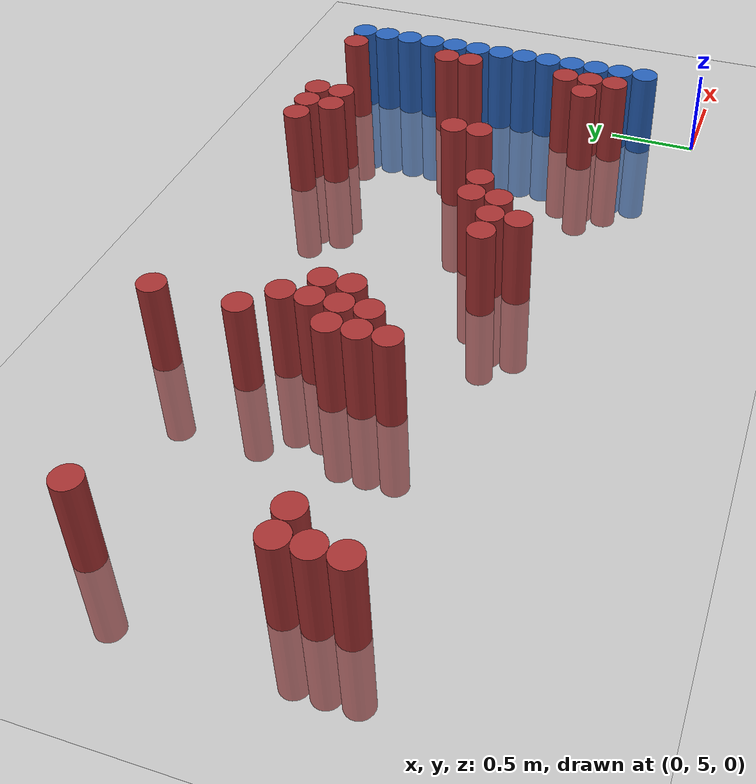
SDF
<sdf version="1.6">
 <world name="default">
  <model name="ground_plane">
   <static>1</static>
   <link name="link">
    <collision name="collision">
     <geometry><plane><normal>0 0 1</normal><size>100 100</size></plane></geometry>
     <surface><friction><ode><mu>100</mu><mu2>50</mu2></ode></friction></surface>
    </collision>
    <visual name="visual">
     <cast_shadows>0</cast_shadows>
     <geometry><plane><normal>0 0 1</normal><size>100 100</size></plane></geometry>
     <material>
      <script><uri>file://media/materials/scripts/gazebo.material</uri><name>Gazebo/Grey</name></script>
     </material>
    </visual>
   </link>
  </model>
  <model name="unit_cylinder_147">
   <static>1</static>
   <pose>-3.975000 5.625000 0.000000 0.000000 0.000000 0.000000</pose>
   <link name="link">
    <inertial>
     <mass>1</mass>
     <inertia><ixx>0.145833</ixx><ixy>0</ixy><ixz>0</ixz><iyy>0.145833</iyy><iyz>0</iyz><izz>0.125</izz></inertia>
    </inertial>
    <collision name="collision">
     <geometry><cylinder><radius>0.075000</radius><length>1</length></cylinder></geometry>
    </collision>
    <visual name="visual">
     <geometry><cylinder><radius>0.075000</radius><length>1</length></cylinder></geometry>
     <material>
      <ambient>0.648000 0.192000 0.192000 1</ambient>
      <diffuse>0.648000 0.192000 0.192000 1</diffuse>
     </material>
     <material>
      <script><name>Gazebo/Grey</name><uri>file://media/materials/scripts/gazebo.material</uri></script>
     </material>
    </visual>
   </link>
  </model>
  <model name="unit_cylinder_148">
   <static>1</static>
   <pose>-3.975000 5.775000 0.000000 0.000000 0.000000 0.000000</pose>
   <link name="link">
    <inertial>
     <mass>1</mass>
     <inertia><ixx>0.145833</ixx><ixy>0</ixy><ixz>0</ixz><iyy>0.145833</iyy><iyz>0</iyz><izz>0.125</izz></inertia>
    </inertial>
    <collision name="collision">
     <geometry><cylinder><radius>0.075000</radius><length>1</length></cylinder></geometry>
    </collision>
    <visual name="visual">
     <geometry><cylinder><radius>0.075000</radius><length>1</length></cylinder></geometry>
     <material>
      <ambient>0.648000 0.192000 0.192000 1</ambient>
      <diffuse>0.648000 0.192000 0.192000 1</diffuse>
     </material>
     <material>
      <script><name>Gazebo/Grey</name><uri>file://media/materials/scripts/gazebo.material</uri></script>
     </material>
    </visual>
   </link>
  </model>
  <model name="unit_cylinder_149">
   <static>1</static>
   <pose>-3.975000 5.925000 0.000000 0.000000 0.000000 0.000000</pose>
   <link name="link">
    <inertial>
     <mass>1</mass>
     <inertia><ixx>0.145833</ixx><ixy>0</ixy><ixz>0</ixz><iyy>0.145833</iyy><iyz>0</iyz><izz>0.125</izz></inertia>
    </inertial>
    <collision name="collision">
     <geometry><cylinder><radius>0.075000</radius><length>1</length></cylinder></geometry>
    </collision>
    <visual name="visual">
     <geometry><cylinder><radius>0.075000</radius><length>1</length></cylinder></geometry>
     <material>
      <ambient>0.648000 0.192000 0.192000 1</ambient>
      <diffuse>0.648000 0.192000 0.192000 1</diffuse>
     </material>
     <material>
      <script><name>Gazebo/Grey</name><uri>file://media/materials/scripts/gazebo.material</uri></script>
     </material>
    </visual>
   </link>
  </model>
  <model name="unit_cylinder_150">
   <static>1</static>
   <pose>-3.975000 6.825000 0.000000 0.000000 0.000000 0.000000</pose>
   <link name="link">
    <inertial>
     <mass>1</mass>
     <inertia><ixx>0.145833</ixx><ixy>0</ixy><ixz>0</ixz><iyy>0.145833</iyy><iyz>0</iyz><izz>0.125</izz></inertia>
    </inertial>
    <collision name="collision">
     <geometry><cylinder><radius>0.075000</radius><length>1</length></cylinder></geometry>
    </collision>
    <visual name="visual">
     <geometry><cylinder><radius>0.075000</radius><length>1</length></cylinder></geometry>
     <material>
      <ambient>0.648000 0.192000 0.192000 1</ambient>
      <diffuse>0.648000 0.192000 0.192000 1</diffuse>
     </material>
     <material>
      <script><name>Gazebo/Grey</name><uri>file://media/materials/scripts/gazebo.material</uri></script>
     </material>
    </visual>
   </link>
  </model>
  <model name="unit_cylinder_153">
   <static>1</static>
   <pose>-3.825000 5.925000 0.000000 0.000000 0.000000 0.000000</pose>
   <link name="link">
    <inertial>
     <mass>1</mass>
     <inertia><ixx>0.145833</ixx><ixy>0</ixy><ixz>0</ixz><iyy>0.145833</iyy><iyz>0</iyz><izz>0.125</izz></inertia>
    </inertial>
    <collision name="collision">
     <geometry><cylinder><radius>0.075000</radius><length>1</length></cylinder></geometry>
    </collision>
    <visual name="visual">
     <geometry><cylinder><radius>0.075000</radius><length>1</length></cylinder></geometry>
     <material>
      <ambient>0.648000 0.192000 0.192000 1</ambient>
      <diffuse>0.648000 0.192000 0.192000 1</diffuse>
     </material>
     <material>
      <script><name>Gazebo/Grey</name><uri>file://media/materials/scripts/gazebo.material</uri></script>
     </material>
    </visual>
   </link>
  </model>
  <model name="unit_cylinder_159">
   <static>1</static>
   <pose>-2.775000 5.925000 0.000000 0.000000 0.000000 0.000000</pose>
   <link name="link">
    <inertial>
     <mass>1</mass>
     <inertia><ixx>0.145833</ixx><ixy>0</ixy><ixz>0</ixz><iyy>0.145833</iyy><iyz>0</iyz><izz>0.125</izz></inertia>
    </inertial>
    <collision name="collision">
     <geometry><cylinder><radius>0.075000</radius><length>1</length></cylinder></geometry>
    </collision>
    <visual name="visual">
     <geometry><cylinder><radius>0.075000</radius><length>1</length></cylinder></geometry>
     <material>
      <ambient>0.648000 0.192000 0.192000 1</ambient>
      <diffuse>0.648000 0.192000 0.192000 1</diffuse>
     </material>
     <material>
      <script><name>Gazebo/Grey</name><uri>file://media/materials/scripts/gazebo.material</uri></script>
     </material>
    </visual>
   </link>
  </model>
  <model name="unit_cylinder_160">
   <static>1</static>
   <pose>-2.775000 6.075000 0.000000 0.000000 0.000000 0.000000</pose>
   <link name="link">
    <inertial>
     <mass>1</mass>
     <inertia><ixx>0.145833</ixx><ixy>0</ixy><ixz>0</ixz><iyy>0.145833</iyy><iyz>0</iyz><izz>0.125</izz></inertia>
    </inertial>
    <collision name="collision">
     <geometry><cylinder><radius>0.075000</radius><length>1</length></cylinder></geometry>
    </collision>
    <visual name="visual">
     <geometry><cylinder><radius>0.075000</radius><length>1</length></cylinder></geometry>
     <material>
      <ambient>0.648000 0.192000 0.192000 1</ambient>
      <diffuse>0.648000 0.192000 0.192000 1</diffuse>
     </material>
     <material>
      <script><name>Gazebo/Grey</name><uri>file://media/materials/scripts/gazebo.material</uri></script>
     </material>
    </visual>
   </link>
  </model>
  <model name="unit_cylinder_161">
   <static>1</static>
   <pose>-2.775000 6.225000 0.000000 0.000000 0.000000 0.000000</pose>
   <link name="link">
    <inertial>
     <mass>1</mass>
     <inertia><ixx>0.145833</ixx><ixy>0</ixy><ixz>0</ixz><iyy>0.145833</iyy><iyz>0</iyz><izz>0.125</izz></inertia>
    </inertial>
    <collision name="collision">
     <geometry><cylinder><radius>0.075000</radius><length>1</length></cylinder></geometry>
    </collision>
    <visual name="visual">
     <geometry><cylinder><radius>0.075000</radius><length>1</length></cylinder></geometry>
     <material>
      <ambient>0.648000 0.192000 0.192000 1</ambient>
      <diffuse>0.648000 0.192000 0.192000 1</diffuse>
     </material>
     <material>
      <script><name>Gazebo/Grey</name><uri>file://media/materials/scripts/gazebo.material</uri></script>
     </material>
    </visual>
   </link>
  </model>
  <model name="unit_cylinder_162">
   <static>1</static>
   <pose>-2.775000 6.675000 0.000000 0.000000 0.000000 0.000000</pose>
   <link name="link">
    <inertial>
     <mass>1</mass>
     <inertia><ixx>0.145833</ixx><ixy>0</ixy><ixz>0</ixz><iyy>0.145833</iyy><iyz>0</iyz><izz>0.125</izz></inertia>
    </inertial>
    <collision name="collision">
     <geometry><cylinder><radius>0.075000</radius><length>1</length></cylinder></geometry>
    </collision>
    <visual name="visual">
     <geometry><cylinder><radius>0.075000</radius><length>1</length></cylinder></geometry>
     <material>
      <ambient>0.648000 0.192000 0.192000 1</ambient>
      <diffuse>0.648000 0.192000 0.192000 1</diffuse>
     </material>
     <material>
      <script><name>Gazebo/Grey</name><uri>file://media/materials/scripts/gazebo.material</uri></script>
     </material>
    </visual>
   </link>
  </model>
  <model name="unit_cylinder_163">
   <static>1</static>
   <pose>-2.775000 7.125000 0.000000 0.000000 0.000000 0.000000</pose>
   <link name="link">
    <inertial>
     <mass>1</mass>
     <inertia><ixx>0.145833</ixx><ixy>0</ixy><ixz>0</ixz><iyy>0.145833</iyy><iyz>0</iyz><izz>0.125</izz></inertia>
    </inertial>
    <collision name="collision">
     <geometry><cylinder><radius>0.075000</radius><length>1</length></cylinder></geometry>
    </collision>
    <visual name="visual">
     <geometry><cylinder><radius>0.075000</radius><length>1</length></cylinder></geometry>
     <material>
      <ambient>0.648000 0.192000 0.192000 1</ambient>
      <diffuse>0.648000 0.192000 0.192000 1</diffuse>
     </material>
     <material>
      <script><name>Gazebo/Grey</name><uri>file://media/materials/scripts/gazebo.material</uri></script>
     </material>
    </visual>
   </link>
  </model>
  <model name="unit_cylinder_166">
   <static>1</static>
   <pose>-2.625000 6.075000 0.000000 0.000000 0.000000 0.000000</pose>
   <link name="link">
    <inertial>
     <mass>1</mass>
     <inertia><ixx>0.145833</ixx><ixy>0</ixy><ixz>0</ixz><iyy>0.145833</iyy><iyz>0</iyz><izz>0.125</izz></inertia>
    </inertial>
    <collision name="collision">
     <geometry><cylinder><radius>0.075000</radius><length>1</length></cylinder></geometry>
    </collision>
    <visual name="visual">
     <geometry><cylinder><radius>0.075000</radius><length>1</length></cylinder></geometry>
     <material>
      <ambient>0.648000 0.192000 0.192000 1</ambient>
      <diffuse>0.648000 0.192000 0.192000 1</diffuse>
     </material>
     <material>
      <script><name>Gazebo/Grey</name><uri>file://media/materials/scripts/gazebo.material</uri></script>
     </material>
    </visual>
   </link>
  </model>
  <model name="unit_cylinder_167">
   <static>1</static>
   <pose>-2.625000 6.225000 0.000000 0.000000 0.000000 0.000000</pose>
   <link name="link">
    <inertial>
     <mass>1</mass>
     <inertia><ixx>0.145833</ixx><ixy>0</ixy><ixz>0</ixz><iyy>0.145833</iyy><iyz>0</iyz><izz>0.125</izz></inertia>
    </inertial>
    <collision name="collision">
     <geometry><cylinder><radius>0.075000</radius><length>1</length></cylinder></geometry>
    </collision>
    <visual name="visual">
     <geometry><cylinder><radius>0.075000</radius><length>1</length></cylinder></geometry>
     <material>
      <ambient>0.648000 0.192000 0.192000 1</ambient>
      <diffuse>0.648000 0.192000 0.192000 1</diffuse>
     </material>
     <material>
      <script><name>Gazebo/Grey</name><uri>file://media/materials/scripts/gazebo.material</uri></script>
     </material>
    </visual>
   </link>
  </model>
  <model name="unit_cylinder_168">
   <static>1</static>
   <pose>-2.625000 6.375000 0.000000 0.000000 0.000000 0.000000</pose>
   <link name="link">
    <inertial>
     <mass>1</mass>
     <inertia><ixx>0.145833</ixx><ixy>0</ixy><ixz>0</ixz><iyy>0.145833</iyy><iyz>0</iyz><izz>0.125</izz></inertia>
    </inertial>
    <collision name="collision">
     <geometry><cylinder><radius>0.075000</radius><length>1</length></cylinder></geometry>
    </collision>
    <visual name="visual">
     <geometry><cylinder><radius>0.075000</radius><length>1</length></cylinder></geometry>
     <material>
      <ambient>0.648000 0.192000 0.192000 1</ambient>
      <diffuse>0.648000 0.192000 0.192000 1</diffuse>
     </material>
     <material>
      <script><name>Gazebo/Grey</name><uri>file://media/materials/scripts/gazebo.material</uri></script>
     </material>
    </visual>
   </link>
  </model>
  <model name="unit_cylinder_169">
   <static>1</static>
   <pose>-2.625000 6.525000 0.000000 0.000000 0.000000 0.000000</pose>
   <link name="link">
    <inertial>
     <mass>1</mass>
     <inertia><ixx>0.145833</ixx><ixy>0</ixy><ixz>0</ixz><iyy>0.145833</iyy><iyz>0</iyz><izz>0.125</izz></inertia>
    </inertial>
    <collision name="collision">
     <geometry><cylinder><radius>0.075000</radius><length>1</length></cylinder></geometry>
    </collision>
    <visual name="visual">
     <geometry><cylinder><radius>0.075000</radius><length>1</length></cylinder></geometry>
     <material>
      <ambient>0.648000 0.192000 0.192000 1</ambient>
      <diffuse>0.648000 0.192000 0.192000 1</diffuse>
     </material>
     <material>
      <script><name>Gazebo/Grey</name><uri>file://media/materials/scripts/gazebo.material</uri></script>
     </material>
    </visual>
   </link>
  </model>
  <model name="unit_cylinder_172">
   <static>1</static>
   <pose>-2.475000 6.225000 0.000000 0.000000 0.000000 0.000000</pose>
   <link name="link">
    <inertial>
     <mass>1</mass>
     <inertia><ixx>0.145833</ixx><ixy>0</ixy><ixz>0</ixz><iyy>0.145833</iyy><iyz>0</iyz><izz>0.125</izz></inertia>
    </inertial>
    <collision name="collision">
     <geometry><cylinder><radius>0.075000</radius><length>1</length></cylinder></geometry>
    </collision>
    <visual name="visual">
     <geometry><cylinder><radius>0.075000</radius><length>1</length></cylinder></geometry>
     <material>
      <ambient>0.648000 0.192000 0.192000 1</ambient>
      <diffuse>0.648000 0.192000 0.192000 1</diffuse>
     </material>
     <material>
      <script><name>Gazebo/Grey</name><uri>file://media/materials/scripts/gazebo.material</uri></script>
     </material>
    </visual>
   </link>
  </model>
  <model name="unit_cylinder_173">
   <static>1</static>
   <pose>-2.475000 6.375000 0.000000 0.000000 0.000000 0.000000</pose>
   <link name="link">
    <inertial>
     <mass>1</mass>
     <inertia><ixx>0.145833</ixx><ixy>0</ixy><ixz>0</ixz><iyy>0.145833</iyy><iyz>0</iyz><izz>0.125</izz></inertia>
    </inertial>
    <collision name="collision">
     <geometry><cylinder><radius>0.075000</radius><length>1</length></cylinder></geometry>
    </collision>
    <visual name="visual">
     <geometry><cylinder><radius>0.075000</radius><length>1</length></cylinder></geometry>
     <material>
      <ambient>0.648000 0.192000 0.192000 1</ambient>
      <diffuse>0.648000 0.192000 0.192000 1</diffuse>
     </material>
     <material>
      <script><name>Gazebo/Grey</name><uri>file://media/materials/scripts/gazebo.material</uri></script>
     </material>
    </visual>
   </link>
  </model>
  <model name="unit_cylinder_174">
   <static>1</static>
   <pose>-1.875000 5.775000 0.000000 0.000000 0.000000 0.000000</pose>
   <link name="link">
    <inertial>
     <mass>1</mass>
     <inertia><ixx>0.145833</ixx><ixy>0</ixy><ixz>0</ixz><iyy>0.145833</iyy><iyz>0</iyz><izz>0.125</izz></inertia>
    </inertial>
    <collision name="collision">
     <geometry><cylinder><radius>0.075000</radius><length>1</length></cylinder></geometry>
    </collision>
    <visual name="visual">
     <geometry><cylinder><radius>0.075000</radius><length>1</length></cylinder></geometry>
     <material>
      <ambient>0.648000 0.192000 0.192000 1</ambient>
      <diffuse>0.648000 0.192000 0.192000 1</diffuse>
     </material>
     <material>
      <script><name>Gazebo/Grey</name><uri>file://media/materials/scripts/gazebo.material</uri></script>
     </material>
    </visual>
   </link>
  </model>
  <model name="unit_cylinder_177">
   <static>1</static>
   <pose>-1.725000 5.625000 0.000000 0.000000 0.000000 0.000000</pose>
   <link name="link">
    <inertial>
     <mass>1</mass>
     <inertia><ixx>0.145833</ixx><ixy>0</ixy><ixz>0</ixz><iyy>0.145833</iyy><iyz>0</iyz><izz>0.125</izz></inertia>
    </inertial>
    <collision name="collision">
     <geometry><cylinder><radius>0.075000</radius><length>1</length></cylinder></geometry>
    </collision>
    <visual name="visual">
     <geometry><cylinder><radius>0.075000</radius><length>1</length></cylinder></geometry>
     <material>
      <ambient>0.648000 0.192000 0.192000 1</ambient>
      <diffuse>0.648000 0.192000 0.192000 1</diffuse>
     </material>
     <material>
      <script><name>Gazebo/Grey</name><uri>file://media/materials/scripts/gazebo.material</uri></script>
     </material>
    </visual>
   </link>
  </model>
  <model name="unit_cylinder_178">
   <static>1</static>
   <pose>-1.725000 5.775000 0.000000 0.000000 0.000000 0.000000</pose>
   <link name="link">
    <inertial>
     <mass>1</mass>
     <inertia><ixx>0.145833</ixx><ixy>0</ixy><ixz>0</ixz><iyy>0.145833</iyy><iyz>0</iyz><izz>0.125</izz></inertia>
    </inertial>
    <collision name="collision">
     <geometry><cylinder><radius>0.075000</radius><length>1</length></cylinder></geometry>
    </collision>
    <visual name="visual">
     <geometry><cylinder><radius>0.075000</radius><length>1</length></cylinder></geometry>
     <material>
      <ambient>0.648000 0.192000 0.192000 1</ambient>
      <diffuse>0.648000 0.192000 0.192000 1</diffuse>
     </material>
     <material>
      <script><name>Gazebo/Grey</name><uri>file://media/materials/scripts/gazebo.material</uri></script>
     </material>
    </visual>
   </link>
  </model>
  <model name="unit_cylinder_181">
   <static>1</static>
   <pose>-1.575000 5.775000 0.000000 0.000000 0.000000 0.000000</pose>
   <link name="link">
    <inertial>
     <mass>1</mass>
     <inertia><ixx>0.145833</ixx><ixy>0</ixy><ixz>0</ixz><iyy>0.145833</iyy><iyz>0</iyz><izz>0.125</izz></inertia>
    </inertial>
    <collision name="collision">
     <geometry><cylinder><radius>0.075000</radius><length>1</length></cylinder></geometry>
    </collision>
    <visual name="visual">
     <geometry><cylinder><radius>0.075000</radius><length>1</length></cylinder></geometry>
     <material>
      <ambient>0.648000 0.192000 0.192000 1</ambient>
      <diffuse>0.648000 0.192000 0.192000 1</diffuse>
     </material>
     <material>
      <script><name>Gazebo/Grey</name><uri>file://media/materials/scripts/gazebo.material</uri></script>
     </material>
    </visual>
   </link>
  </model>
  <model name="unit_cylinder_182">
   <static>1</static>
   <pose>-1.575000 5.925000 0.000000 0.000000 0.000000 0.000000</pose>
   <link name="link">
    <inertial>
     <mass>1</mass>
     <inertia><ixx>0.145833</ixx><ixy>0</ixy><ixz>0</ixz><iyy>0.145833</iyy><iyz>0</iyz><izz>0.125</izz></inertia>
    </inertial>
    <collision name="collision">
     <geometry><cylinder><radius>0.075000</radius><length>1</length></cylinder></geometry>
    </collision>
    <visual name="visual">
     <geometry><cylinder><radius>0.075000</radius><length>1</length></cylinder></geometry>
     <material>
      <ambient>0.648000 0.192000 0.192000 1</ambient>
      <diffuse>0.648000 0.192000 0.192000 1</diffuse>
     </material>
     <material>
      <script><name>Gazebo/Grey</name><uri>file://media/materials/scripts/gazebo.material</uri></script>
     </material>
    </visual>
   </link>
  </model>
  <model name="unit_cylinder_185">
   <static>1</static>
   <pose>-1.425000 5.925000 0.000000 0.000000 0.000000 0.000000</pose>
   <link name="link">
    <inertial>
     <mass>1</mass>
     <inertia><ixx>0.145833</ixx><ixy>0</ixy><ixz>0</ixz><iyy>0.145833</iyy><iyz>0</iyz><izz>0.125</izz></inertia>
    </inertial>
    <collision name="collision">
     <geometry><cylinder><radius>0.075000</radius><length>1</length></cylinder></geometry>
    </collision>
    <visual name="visual">
     <geometry><cylinder><radius>0.075000</radius><length>1</length></cylinder></geometry>
     <material>
      <ambient>0.648000 0.192000 0.192000 1</ambient>
      <diffuse>0.648000 0.192000 0.192000 1</diffuse>
     </material>
     <material>
      <script><name>Gazebo/Grey</name><uri>file://media/materials/scripts/gazebo.material</uri></script>
     </material>
    </visual>
   </link>
  </model>
  <model name="unit_cylinder_186">
   <static>1</static>
   <pose>-1.125000 7.125000 0.000000 0.000000 0.000000 0.000000</pose>
   <link name="link">
    <inertial>
     <mass>1</mass>
     <inertia><ixx>0.145833</ixx><ixy>0</ixy><ixz>0</ixz><iyy>0.145833</iyy><iyz>0</iyz><izz>0.125</izz></inertia>
    </inertial>
    <collision name="collision">
     <geometry><cylinder><radius>0.075000</radius><length>1</length></cylinder></geometry>
    </collision>
    <visual name="visual">
     <geometry><cylinder><radius>0.075000</radius><length>1</length></cylinder></geometry>
     <material>
      <ambient>0.648000 0.192000 0.192000 1</ambient>
      <diffuse>0.648000 0.192000 0.192000 1</diffuse>
     </material>
     <material>
      <script><name>Gazebo/Grey</name><uri>file://media/materials/scripts/gazebo.material</uri></script>
     </material>
    </visual>
   </link>
  </model>
  <model name="unit_cylinder_187">
   <static>1</static>
   <pose>-0.975000 6.075000 0.000000 0.000000 0.000000 0.000000</pose>
   <link name="link">
    <inertial>
     <mass>1</mass>
     <inertia><ixx>0.145833</ixx><ixy>0</ixy><ixz>0</ixz><iyy>0.145833</iyy><iyz>0</iyz><izz>0.125</izz></inertia>
    </inertial>
    <collision name="collision">
     <geometry><cylinder><radius>0.075000</radius><length>1</length></cylinder></geometry>
    </collision>
    <visual name="visual">
     <geometry><cylinder><radius>0.075000</radius><length>1</length></cylinder></geometry>
     <material>
      <ambient>0.648000 0.192000 0.192000 1</ambient>
      <diffuse>0.648000 0.192000 0.192000 1</diffuse>
     </material>
     <material>
      <script><name>Gazebo/Grey</name><uri>file://media/materials/scripts/gazebo.material</uri></script>
     </material>
    </visual>
   </link>
  </model>
  <model name="unit_cylinder_188">
   <static>1</static>
   <pose>-0.975000 6.225000 0.000000 0.000000 0.000000 0.000000</pose>
   <link name="link">
    <inertial>
     <mass>1</mass>
     <inertia><ixx>0.145833</ixx><ixy>0</ixy><ixz>0</ixz><iyy>0.145833</iyy><iyz>0</iyz><izz>0.125</izz></inertia>
    </inertial>
    <collision name="collision">
     <geometry><cylinder><radius>0.075000</radius><length>1</length></cylinder></geometry>
    </collision>
    <visual name="visual">
     <geometry><cylinder><radius>0.075000</radius><length>1</length></cylinder></geometry>
     <material>
      <ambient>0.648000 0.192000 0.192000 1</ambient>
      <diffuse>0.648000 0.192000 0.192000 1</diffuse>
     </material>
     <material>
      <script><name>Gazebo/Grey</name><uri>file://media/materials/scripts/gazebo.material</uri></script>
     </material>
    </visual>
   </link>
  </model>
  <model name="unit_cylinder_189">
   <static>1</static>
   <pose>-0.975000 6.975000 0.000000 0.000000 0.000000 0.000000</pose>
   <link name="link">
    <inertial>
     <mass>1</mass>
     <inertia><ixx>0.145833</ixx><ixy>0</ixy><ixz>0</ixz><iyy>0.145833</iyy><iyz>0</iyz><izz>0.125</izz></inertia>
    </inertial>
    <collision name="collision">
     <geometry><cylinder><radius>0.075000</radius><length>1</length></cylinder></geometry>
    </collision>
    <visual name="visual">
     <geometry><cylinder><radius>0.075000</radius><length>1</length></cylinder></geometry>
     <material>
      <ambient>0.648000 0.192000 0.192000 1</ambient>
      <diffuse>0.648000 0.192000 0.192000 1</diffuse>
     </material>
     <material>
      <script><name>Gazebo/Grey</name><uri>file://media/materials/scripts/gazebo.material</uri></script>
     </material>
    </visual>
   </link>
  </model>
  <model name="unit_cylinder_190">
   <static>1</static>
   <pose>-0.975000 7.125000 0.000000 0.000000 0.000000 0.000000</pose>
   <link name="link">
    <inertial>
     <mass>1</mass>
     <inertia><ixx>0.145833</ixx><ixy>0</ixy><ixz>0</ixz><iyy>0.145833</iyy><iyz>0</iyz><izz>0.125</izz></inertia>
    </inertial>
    <collision name="collision">
     <geometry><cylinder><radius>0.075000</radius><length>1</length></cylinder></geometry>
    </collision>
    <visual name="visual">
     <geometry><cylinder><radius>0.075000</radius><length>1</length></cylinder></geometry>
     <material>
      <ambient>0.648000 0.192000 0.192000 1</ambient>
      <diffuse>0.648000 0.192000 0.192000 1</diffuse>
     </material>
     <material>
      <script><name>Gazebo/Grey</name><uri>file://media/materials/scripts/gazebo.material</uri></script>
     </material>
    </visual>
   </link>
  </model>
  <model name="unit_cylinder_192">
   <static>1</static>
   <pose>-0.825000 6.975000 0.000000 0.000000 0.000000 0.000000</pose>
   <link name="link">
    <inertial>
     <mass>1</mass>
     <inertia><ixx>0.145833</ixx><ixy>0</ixy><ixz>0</ixz><iyy>0.145833</iyy><iyz>0</iyz><izz>0.125</izz></inertia>
    </inertial>
    <collision name="collision">
     <geometry><cylinder><radius>0.075000</radius><length>1</length></cylinder></geometry>
    </collision>
    <visual name="visual">
     <geometry><cylinder><radius>0.075000</radius><length>1</length></cylinder></geometry>
     <material>
      <ambient>0.648000 0.192000 0.192000 1</ambient>
      <diffuse>0.648000 0.192000 0.192000 1</diffuse>
     </material>
     <material>
      <script><name>Gazebo/Grey</name><uri>file://media/materials/scripts/gazebo.material</uri></script>
     </material>
    </visual>
   </link>
  </model>
  <model name="unit_cylinder_193">
   <static>1</static>
   <pose>-0.825000 7.125000 0.000000 0.000000 0.000000 0.000000</pose>
   <link name="link">
    <inertial>
     <mass>1</mass>
     <inertia><ixx>0.145833</ixx><ixy>0</ixy><ixz>0</ixz><iyy>0.145833</iyy><iyz>0</iyz><izz>0.125</izz></inertia>
    </inertial>
    <collision name="collision">
     <geometry><cylinder><radius>0.075000</radius><length>1</length></cylinder></geometry>
    </collision>
    <visual name="visual">
     <geometry><cylinder><radius>0.075000</radius><length>1</length></cylinder></geometry>
     <material>
      <ambient>0.648000 0.192000 0.192000 1</ambient>
      <diffuse>0.648000 0.192000 0.192000 1</diffuse>
     </material>
     <material>
      <script><name>Gazebo/Grey</name><uri>file://media/materials/scripts/gazebo.material</uri></script>
     </material>
    </visual>
   </link>
  </model>
  <model name="unit_cylinder_198">
   <static>1</static>
   <pose>-0.375000 5.625000 0.000000 0.000000 0.000000 0.000000</pose>
   <link name="link">
    <inertial>
     <mass>1</mass>
     <inertia><ixx>0.145833</ixx><ixy>0</ixy><ixz>0</ixz><iyy>0.145833</iyy><iyz>0</iyz><izz>0.125</izz></inertia>
    </inertial>
    <collision name="collision">
     <geometry><cylinder><radius>0.075000</radius><length>1</length></cylinder></geometry>
    </collision>
    <visual name="visual">
     <geometry><cylinder><radius>0.075000</radius><length>1</length></cylinder></geometry>
     <material>
      <ambient>0.648000 0.192000 0.192000 1</ambient>
      <diffuse>0.648000 0.192000 0.192000 1</diffuse>
     </material>
     <material>
      <script><name>Gazebo/Grey</name><uri>file://media/materials/scripts/gazebo.material</uri></script>
     </material>
    </visual>
   </link>
  </model>
  <model name="unit_cylinder_202">
   <static>1</static>
   <pose>-0.225000 5.475000 0.000000 0.000000 0.000000 0.000000</pose>
   <link name="link">
    <inertial>
     <mass>1</mass>
     <inertia><ixx>0.145833</ixx><ixy>0</ixy><ixz>0</ixz><iyy>0.145833</iyy><iyz>0</iyz><izz>0.125</izz></inertia>
    </inertial>
    <collision name="collision">
     <geometry><cylinder><radius>0.075000</radius><length>1</length></cylinder></geometry>
    </collision>
    <visual name="visual">
     <geometry><cylinder><radius>0.075000</radius><length>1</length></cylinder></geometry>
     <material>
      <ambient>0.648000 0.192000 0.192000 1</ambient>
      <diffuse>0.648000 0.192000 0.192000 1</diffuse>
     </material>
     <material>
      <script><name>Gazebo/Grey</name><uri>file://media/materials/scripts/gazebo.material</uri></script>
     </material>
    </visual>
   </link>
  </model>
  <model name="unit_cylinder_203">
   <static>1</static>
   <pose>-0.225000 5.625000 0.000000 0.000000 0.000000 0.000000</pose>
   <link name="link">
    <inertial>
     <mass>1</mass>
     <inertia><ixx>0.145833</ixx><ixy>0</ixy><ixz>0</ixz><iyy>0.145833</iyy><iyz>0</iyz><izz>0.125</izz></inertia>
    </inertial>
    <collision name="collision">
     <geometry><cylinder><radius>0.075000</radius><length>1</length></cylinder></geometry>
    </collision>
    <visual name="visual">
     <geometry><cylinder><radius>0.075000</radius><length>1</length></cylinder></geometry>
     <material>
      <ambient>0.648000 0.192000 0.192000 1</ambient>
      <diffuse>0.648000 0.192000 0.192000 1</diffuse>
     </material>
     <material>
      <script><name>Gazebo/Grey</name><uri>file://media/materials/scripts/gazebo.material</uri></script>
     </material>
    </visual>
   </link>
  </model>
  <model name="unit_cylinder_204">
   <static>1</static>
   <pose>-0.225000 5.775000 0.000000 0.000000 0.000000 0.000000</pose>
   <link name="link">
    <inertial>
     <mass>1</mass>
     <inertia><ixx>0.145833</ixx><ixy>0</ixy><ixz>0</ixz><iyy>0.145833</iyy><iyz>0</iyz><izz>0.125</izz></inertia>
    </inertial>
    <collision name="collision">
     <geometry><cylinder><radius>0.075000</radius><length>1</length></cylinder></geometry>
    </collision>
    <visual name="visual">
     <geometry><cylinder><radius>0.075000</radius><length>1</length></cylinder></geometry>
     <material>
      <ambient>0.648000 0.192000 0.192000 1</ambient>
      <diffuse>0.648000 0.192000 0.192000 1</diffuse>
     </material>
     <material>
      <script><name>Gazebo/Grey</name><uri>file://media/materials/scripts/gazebo.material</uri></script>
     </material>
    </visual>
   </link>
  </model>
  <model name="unit_cylinder_205">
   <static>1</static>
   <pose>-0.225000 6.375000 0.000000 0.000000 0.000000 0.000000</pose>
   <link name="link">
    <inertial>
     <mass>1</mass>
     <inertia><ixx>0.145833</ixx><ixy>0</ixy><ixz>0</ixz><iyy>0.145833</iyy><iyz>0</iyz><izz>0.125</izz></inertia>
    </inertial>
    <collision name="collision">
     <geometry><cylinder><radius>0.075000</radius><length>1</length></cylinder></geometry>
    </collision>
    <visual name="visual">
     <geometry><cylinder><radius>0.075000</radius><length>1</length></cylinder></geometry>
     <material>
      <ambient>0.648000 0.192000 0.192000 1</ambient>
      <diffuse>0.648000 0.192000 0.192000 1</diffuse>
     </material>
     <material>
      <script><name>Gazebo/Grey</name><uri>file://media/materials/scripts/gazebo.material</uri></script>
     </material>
    </visual>
   </link>
  </model>
  <model name="unit_cylinder_206">
   <static>1</static>
   <pose>-0.225000 6.525000 0.000000 0.000000 0.000000 0.000000</pose>
   <link name="link">
    <inertial>
     <mass>1</mass>
     <inertia><ixx>0.145833</ixx><ixy>0</ixy><ixz>0</ixz><iyy>0.145833</iyy><iyz>0</iyz><izz>0.125</izz></inertia>
    </inertial>
    <collision name="collision">
     <geometry><cylinder><radius>0.075000</radius><length>1</length></cylinder></geometry>
    </collision>
    <visual name="visual">
     <geometry><cylinder><radius>0.075000</radius><length>1</length></cylinder></geometry>
     <material>
      <ambient>0.648000 0.192000 0.192000 1</ambient>
      <diffuse>0.648000 0.192000 0.192000 1</diffuse>
     </material>
     <material>
      <script><name>Gazebo/Grey</name><uri>file://media/materials/scripts/gazebo.material</uri></script>
     </material>
    </visual>
   </link>
  </model>
  <model name="unit_cylinder_207">
   <static>1</static>
   <pose>-0.225000 7.125000 0.000000 0.000000 0.000000 0.000000</pose>
   <link name="link">
    <inertial>
     <mass>1</mass>
     <inertia><ixx>0.145833</ixx><ixy>0</ixy><ixz>0</ixz><iyy>0.145833</iyy><iyz>0</iyz><izz>0.125</izz></inertia>
    </inertial>
    <collision name="collision">
     <geometry><cylinder><radius>0.075000</radius><length>1</length></cylinder></geometry>
    </collision>
    <visual name="visual">
     <geometry><cylinder><radius>0.075000</radius><length>1</length></cylinder></geometry>
     <material>
      <ambient>0.648000 0.192000 0.192000 1</ambient>
      <diffuse>0.648000 0.192000 0.192000 1</diffuse>
     </material>
     <material>
      <script><name>Gazebo/Grey</name><uri>file://media/materials/scripts/gazebo.material</uri></script>
     </material>
    </visual>
   </link>
  </model>
  <model name="unit_cylinder_216">
   <static>1</static>
   <pose>-0.075000 5.325000 0.000000 0.000000 0.000000 0.000000</pose>
   <link name="link">
    <inertial>
     <mass>1</mass>
     <inertia><ixx>0.145833</ixx><ixy>0</ixy><ixz>0</ixz><iyy>0.145833</iyy><iyz>0</iyz><izz>0.125</izz></inertia>
    </inertial>
    <collision name="collision">
     <geometry><cylinder><radius>0.075000</radius><length>1</length></cylinder></geometry>
    </collision>
    <visual name="visual">
     <geometry><cylinder><radius>0.075000</radius><length>1</length></cylinder></geometry>
     <material>
      <ambient>0.152000 0.379000 0.720000 1</ambient>
      <diffuse>0.152000 0.379000 0.720000 1</diffuse>
     </material>
     <material>
      <script><name>Gazebo/Grey</name><uri>file://media/materials/scripts/gazebo.material</uri></script>
     </material>
    </visual>
   </link>
  </model>
  <model name="unit_cylinder_217">
   <static>1</static>
   <pose>-0.075000 5.475000 0.000000 0.000000 0.000000 0.000000</pose>
   <link name="link">
    <inertial>
     <mass>1</mass>
     <inertia><ixx>0.145833</ixx><ixy>0</ixy><ixz>0</ixz><iyy>0.145833</iyy><iyz>0</iyz><izz>0.125</izz></inertia>
    </inertial>
    <collision name="collision">
     <geometry><cylinder><radius>0.075000</radius><length>1</length></cylinder></geometry>
    </collision>
    <visual name="visual">
     <geometry><cylinder><radius>0.075000</radius><length>1</length></cylinder></geometry>
     <material>
      <ambient>0.152000 0.379000 0.720000 1</ambient>
      <diffuse>0.152000 0.379000 0.720000 1</diffuse>
     </material>
     <material>
      <script><name>Gazebo/Grey</name><uri>file://media/materials/scripts/gazebo.material</uri></script>
     </material>
    </visual>
   </link>
  </model>
  <model name="unit_cylinder_218">
   <static>1</static>
   <pose>-0.075000 5.625000 0.000000 0.000000 0.000000 0.000000</pose>
   <link name="link">
    <inertial>
     <mass>1</mass>
     <inertia><ixx>0.145833</ixx><ixy>0</ixy><ixz>0</ixz><iyy>0.145833</iyy><iyz>0</iyz><izz>0.125</izz></inertia>
    </inertial>
    <collision name="collision">
     <geometry><cylinder><radius>0.075000</radius><length>1</length></cylinder></geometry>
    </collision>
    <visual name="visual">
     <geometry><cylinder><radius>0.075000</radius><length>1</length></cylinder></geometry>
     <material>
      <ambient>0.152000 0.379000 0.720000 1</ambient>
      <diffuse>0.152000 0.379000 0.720000 1</diffuse>
     </material>
     <material>
      <script><name>Gazebo/Grey</name><uri>file://media/materials/scripts/gazebo.material</uri></script>
     </material>
    </visual>
   </link>
  </model>
  <model name="unit_cylinder_219">
   <static>1</static>
   <pose>-0.075000 5.775000 0.000000 0.000000 0.000000 0.000000</pose>
   <link name="link">
    <inertial>
     <mass>1</mass>
     <inertia><ixx>0.145833</ixx><ixy>0</ixy><ixz>0</ixz><iyy>0.145833</iyy><iyz>0</iyz><izz>0.125</izz></inertia>
    </inertial>
    <collision name="collision">
     <geometry><cylinder><radius>0.075000</radius><length>1</length></cylinder></geometry>
    </collision>
    <visual name="visual">
     <geometry><cylinder><radius>0.075000</radius><length>1</length></cylinder></geometry>
     <material>
      <ambient>0.152000 0.379000 0.720000 1</ambient>
      <diffuse>0.152000 0.379000 0.720000 1</diffuse>
     </material>
     <material>
      <script><name>Gazebo/Grey</name><uri>file://media/materials/scripts/gazebo.material</uri></script>
     </material>
    </visual>
   </link>
  </model>
  <model name="unit_cylinder_220">
   <static>1</static>
   <pose>-0.075000 5.925000 0.000000 0.000000 0.000000 0.000000</pose>
   <link name="link">
    <inertial>
     <mass>1</mass>
     <inertia><ixx>0.145833</ixx><ixy>0</ixy><ixz>0</ixz><iyy>0.145833</iyy><iyz>0</iyz><izz>0.125</izz></inertia>
    </inertial>
    <collision name="collision">
     <geometry><cylinder><radius>0.075000</radius><length>1</length></cylinder></geometry>
    </collision>
    <visual name="visual">
     <geometry><cylinder><radius>0.075000</radius><length>1</length></cylinder></geometry>
     <material>
      <ambient>0.152000 0.379000 0.720000 1</ambient>
      <diffuse>0.152000 0.379000 0.720000 1</diffuse>
     </material>
     <material>
      <script><name>Gazebo/Grey</name><uri>file://media/materials/scripts/gazebo.material</uri></script>
     </material>
    </visual>
   </link>
  </model>
  <model name="unit_cylinder_221">
   <static>1</static>
   <pose>-0.075000 6.075000 0.000000 0.000000 0.000000 0.000000</pose>
   <link name="link">
    <inertial>
     <mass>1</mass>
     <inertia><ixx>0.145833</ixx><ixy>0</ixy><ixz>0</ixz><iyy>0.145833</iyy><iyz>0</iyz><izz>0.125</izz></inertia>
    </inertial>
    <collision name="collision">
     <geometry><cylinder><radius>0.075000</radius><length>1</length></cylinder></geometry>
    </collision>
    <visual name="visual">
     <geometry><cylinder><radius>0.075000</radius><length>1</length></cylinder></geometry>
     <material>
      <ambient>0.152000 0.379000 0.720000 1</ambient>
      <diffuse>0.152000 0.379000 0.720000 1</diffuse>
     </material>
     <material>
      <script><name>Gazebo/Grey</name><uri>file://media/materials/scripts/gazebo.material</uri></script>
     </material>
    </visual>
   </link>
  </model>
  <model name="unit_cylinder_222">
   <static>1</static>
   <pose>-0.075000 6.225000 0.000000 0.000000 0.000000 0.000000</pose>
   <link name="link">
    <inertial>
     <mass>1</mass>
     <inertia><ixx>0.145833</ixx><ixy>0</ixy><ixz>0</ixz><iyy>0.145833</iyy><iyz>0</iyz><izz>0.125</izz></inertia>
    </inertial>
    <collision name="collision">
     <geometry><cylinder><radius>0.075000</radius><length>1</length></cylinder></geometry>
    </collision>
    <visual name="visual">
     <geometry><cylinder><radius>0.075000</radius><length>1</length></cylinder></geometry>
     <material>
      <ambient>0.152000 0.379000 0.720000 1</ambient>
      <diffuse>0.152000 0.379000 0.720000 1</diffuse>
     </material>
     <material>
      <script><name>Gazebo/Grey</name><uri>file://media/materials/scripts/gazebo.material</uri></script>
     </material>
    </visual>
   </link>
  </model>
  <model name="unit_cylinder_223">
   <static>1</static>
   <pose>-0.075000 6.375000 0.000000 0.000000 0.000000 0.000000</pose>
   <link name="link">
    <inertial>
     <mass>1</mass>
     <inertia><ixx>0.145833</ixx><ixy>0</ixy><ixz>0</ixz><iyy>0.145833</iyy><iyz>0</iyz><izz>0.125</izz></inertia>
    </inertial>
    <collision name="collision">
     <geometry><cylinder><radius>0.075000</radius><length>1</length></cylinder></geometry>
    </collision>
    <visual name="visual">
     <geometry><cylinder><radius>0.075000</radius><length>1</length></cylinder></geometry>
     <material>
      <ambient>0.152000 0.379000 0.720000 1</ambient>
      <diffuse>0.152000 0.379000 0.720000 1</diffuse>
     </material>
     <material>
      <script><name>Gazebo/Grey</name><uri>file://media/materials/scripts/gazebo.material</uri></script>
     </material>
    </visual>
   </link>
  </model>
  <model name="unit_cylinder_224">
   <static>1</static>
   <pose>-0.075000 6.525000 0.000000 0.000000 0.000000 0.000000</pose>
   <link name="link">
    <inertial>
     <mass>1</mass>
     <inertia><ixx>0.145833</ixx><ixy>0</ixy><ixz>0</ixz><iyy>0.145833</iyy><iyz>0</iyz><izz>0.125</izz></inertia>
    </inertial>
    <collision name="collision">
     <geometry><cylinder><radius>0.075000</radius><length>1</length></cylinder></geometry>
    </collision>
    <visual name="visual">
     <geometry><cylinder><radius>0.075000</radius><length>1</length></cylinder></geometry>
     <material>
      <ambient>0.152000 0.379000 0.720000 1</ambient>
      <diffuse>0.152000 0.379000 0.720000 1</diffuse>
     </material>
     <material>
      <script><name>Gazebo/Grey</name><uri>file://media/materials/scripts/gazebo.material</uri></script>
     </material>
    </visual>
   </link>
  </model>
  <model name="unit_cylinder_225">
   <static>1</static>
   <pose>-0.075000 6.675000 0.000000 0.000000 0.000000 0.000000</pose>
   <link name="link">
    <inertial>
     <mass>1</mass>
     <inertia><ixx>0.145833</ixx><ixy>0</ixy><ixz>0</ixz><iyy>0.145833</iyy><iyz>0</iyz><izz>0.125</izz></inertia>
    </inertial>
    <collision name="collision">
     <geometry><cylinder><radius>0.075000</radius><length>1</length></cylinder></geometry>
    </collision>
    <visual name="visual">
     <geometry><cylinder><radius>0.075000</radius><length>1</length></cylinder></geometry>
     <material>
      <ambient>0.152000 0.379000 0.720000 1</ambient>
      <diffuse>0.152000 0.379000 0.720000 1</diffuse>
     </material>
     <material>
      <script><name>Gazebo/Grey</name><uri>file://media/materials/scripts/gazebo.material</uri></script>
     </material>
    </visual>
   </link>
  </model>
  <model name="unit_cylinder_226">
   <static>1</static>
   <pose>-0.075000 6.825000 0.000000 0.000000 0.000000 0.000000</pose>
   <link name="link">
    <inertial>
     <mass>1</mass>
     <inertia><ixx>0.145833</ixx><ixy>0</ixy><ixz>0</ixz><iyy>0.145833</iyy><iyz>0</iyz><izz>0.125</izz></inertia>
    </inertial>
    <collision name="collision">
     <geometry><cylinder><radius>0.075000</radius><length>1</length></cylinder></geometry>
    </collision>
    <visual name="visual">
     <geometry><cylinder><radius>0.075000</radius><length>1</length></cylinder></geometry>
     <material>
      <ambient>0.152000 0.379000 0.720000 1</ambient>
      <diffuse>0.152000 0.379000 0.720000 1</diffuse>
     </material>
     <material>
      <script><name>Gazebo/Grey</name><uri>file://media/materials/scripts/gazebo.material</uri></script>
     </material>
    </visual>
   </link>
  </model>
  <model name="unit_cylinder_227">
   <static>1</static>
   <pose>-0.075000 6.975000 0.000000 0.000000 0.000000 0.000000</pose>
   <link name="link">
    <inertial>
     <mass>1</mass>
     <inertia><ixx>0.145833</ixx><ixy>0</ixy><ixz>0</ixz><iyy>0.145833</iyy><iyz>0</iyz><izz>0.125</izz></inertia>
    </inertial>
    <collision name="collision">
     <geometry><cylinder><radius>0.075000</radius><length>1</length></cylinder></geometry>
    </collision>
    <visual name="visual">
     <geometry><cylinder><radius>0.075000</radius><length>1</length></cylinder></geometry>
     <material>
      <ambient>0.152000 0.379000 0.720000 1</ambient>
      <diffuse>0.152000 0.379000 0.720000 1</diffuse>
     </material>
     <material>
      <script><name>Gazebo/Grey</name><uri>file://media/materials/scripts/gazebo.material</uri></script>
     </material>
    </visual>
   </link>
  </model>
  <model name="unit_cylinder_228">
   <static>1</static>
   <pose>-0.075000 7.125000 0.000000 0.000000 0.000000 0.000000</pose>
   <link name="link">
    <inertial>
     <mass>1</mass>
     <inertia><ixx>0.145833</ixx><ixy>0</ixy><ixz>0</ixz><iyy>0.145833</iyy><iyz>0</iyz><izz>0.125</izz></inertia>
    </inertial>
    <collision name="collision">
     <geometry><cylinder><radius>0.075000</radius><length>1</length></cylinder></geometry>
    </collision>
    <visual name="visual">
     <geometry><cylinder><radius>0.075000</radius><length>1</length></cylinder></geometry>
     <material>
      <ambient>0.152000 0.379000 0.720000 1</ambient>
      <diffuse>0.152000 0.379000 0.720000 1</diffuse>
     </material>
     <material>
      <script><name>Gazebo/Grey</name><uri>file://media/materials/scripts/gazebo.material</uri></script>
     </material>
    </visual>
   </link>
  </model>
 </world>
</sdf>
